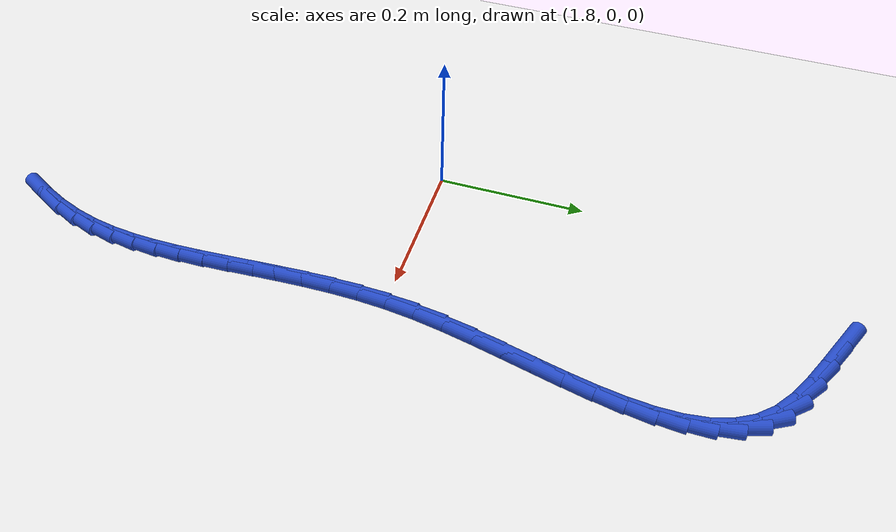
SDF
<sdf version="1.6">
 <world name="default">
  <model name="ground_plane">
   <static>1</static>
   <link name="link">
    <collision name="collision">
     <geometry><plane><normal>0 0 1</normal><size>100 100</size></plane></geometry>
     <surface><friction><ode><mu>100</mu><mu2>50</mu2></ode></friction></surface>
    </collision>
    <visual name="visual">
     <cast_shadows>0</cast_shadows>
     <geometry><plane><normal>0 0 1</normal><size>100 100</size></plane></geometry>
     <material>
      <script><uri>file://media/materials/scripts/gazebo.material</uri><name>Gazebo/WhiteGlow</name></script>
     </material>
    </visual>
   </link>
  </model>
  <model name="line">
   <link name="link_84">
    <pose>1.9405899093509134 0.5482850672913152 0.01 0 1.57 -0.4155272819419987</pose>
    <collision name="collision">
     <geometry><cylinder><radius>0.01</radius><length>0.08</length></cylinder></geometry>
    </collision>
    <visual name="visual">
     <material>
      <script><name>Gazebo/Blue</name><uri>file://media/materials/scripts/gazebo.material</uri></script>
     </material>
     <geometry><cylinder><radius>0.01</radius><length>0.08</length></cylinder></geometry>
    </visual>
   </link>
   <link name="link_85">
    <pose>1.9742479665416062 0.5334345095919215 0.01 0 1.57 -0.4329333028200804</pose>
    <collision name="collision">
     <geometry><cylinder><radius>0.01</radius><length>0.08</length></cylinder></geometry>
    </collision>
    <visual name="visual">
     <material>
      <script><name>Gazebo/Blue</name><uri>file://media/materials/scripts/gazebo.material</uri></script>
     </material>
     <geometry><cylinder><radius>0.01</radius><length>0.08</length></cylinder></geometry>
    </visual>
   </link>
   <link name="link_86">
    <pose>2.0066600028715373 0.5184544413675684 0.01 0 1.57 -0.49647282865860654</pose>
    <collision name="collision">
     <geometry><cylinder><radius>0.01</radius><length>0.08</length></cylinder></geometry>
    </collision>
    <visual name="visual">
     <material>
      <script><name>Gazebo/Blue</name><uri>file://media/materials/scripts/gazebo.material</uri></script>
     </material>
     <geometry><cylinder><radius>0.01</radius><length>0.08</length></cylinder></geometry>
    </visual>
   </link>
   <link name="link_87">
    <pose>2.036349441783516 0.5023707389948417 0.01 0 1.57 -0.6190568529128387</pose>
    <collision name="collision">
     <geometry><cylinder><radius>0.01</radius><length>0.08</length></cylinder></geometry>
    </collision>
    <visual name="visual">
     <material>
      <script><name>Gazebo/Blue</name><uri>file://media/materials/scripts/gazebo.material</uri></script>
     </material>
     <geometry><cylinder><radius>0.01</radius><length>0.08</length></cylinder></geometry>
    </visual>
   </link>
   <link name="link_88">
    <pose>2.0618397067203493 0.48420927885032716 0.01 0 1.57 -0.8171975485745948</pose>
    <collision name="collision">
     <geometry><cylinder><radius>0.01</radius><length>0.08</length></cylinder></geometry>
    </collision>
    <visual name="visual">
     <material>
      <script><name>Gazebo/Blue</name><uri>file://media/materials/scripts/gazebo.material</uri></script>
     </material>
     <geometry><cylinder><radius>0.01</radius><length>0.08</length></cylinder></geometry>
    </visual>
   </link>
   <link name="link_89">
    <pose>2.0817122450180516 0.4630309066548342 0.01 0 1.57 -1.0534451305153139</pose>
    <collision name="collision">
     <geometry><cylinder><radius>0.01</radius><length>0.08</length></cylinder></geometry>
    </collision>
    <visual name="visual">
     <material>
      <script><name>Gazebo/Blue</name><uri>file://media/materials/scripts/gazebo.material</uri></script>
     </material>
     <geometry><cylinder><radius>0.01</radius><length>0.08</length></cylinder></geometry>
    </visual>
   </link>
   <link name="link_90">
    <pose>2.0956404976929783 0.4385545815508609 0.01 0 1.57 -1.2664079119649352</pose>
    <collision name="collision">
     <geometry><cylinder><radius>0.01</radius><length>0.08</length></cylinder></geometry>
    </collision>
    <visual name="visual">
     <material>
      <script><name>Gazebo/Blue</name><uri>file://media/materials/scripts/gazebo.material</uri></script>
     </material>
     <geometry><cylinder><radius>0.01</radius><length>0.08</length></cylinder></geometry>
    </visual>
   </link>
   <link name="link_91">
    <pose>2.10427005209674 0.4110851475285895 0.01 0 1.57 -1.4385024205389851</pose>
    <collision name="collision">
     <geometry><cylinder><radius>0.01</radius><length>0.08</length></cylinder></geometry>
    </collision>
    <visual name="visual">
     <material>
      <script><name>Gazebo/Blue</name><uri>file://media/materials/scripts/gazebo.material</uri></script>
     </material>
     <geometry><cylinder><radius>0.01</radius><length>0.08</length></cylinder></geometry>
    </visual>
   </link>
   <link name="link_92">
    <pose>2.1082804484086646 0.38094791097832975 0.01 0 1.57 -1.5686171743967905</pose>
    <collision name="collision">
     <geometry><cylinder><radius>0.01</radius><length>0.08</length></cylinder></geometry>
    </collision>
    <visual name="visual">
     <material>
      <script><name>Gazebo/Blue</name><uri>file://media/materials/scripts/gazebo.material</uri></script>
     </material>
     <geometry><cylinder><radius>0.01</radius><length>0.08</length></cylinder></geometry>
    </visual>
   </link>
   <link name="link_93">
    <pose>2.1083512268080766 0.34846817829039073 0.01 0 1.57 1.4786066827711533</pose>
    <collision name="collision">
     <geometry><cylinder><radius>0.01</radius><length>0.08</length></cylinder></geometry>
    </collision>
    <visual name="visual">
     <material>
      <script><name>Gazebo/Blue</name><uri>file://media/materials/scripts/gazebo.material</uri></script>
     </material>
     <geometry><cylinder><radius>0.01</radius><length>0.08</length></cylinder></geometry>
    </visual>
   </link>
   <link name="link_94">
    <pose>2.1051619274743048 0.3139712558550822 0.01 0 1.57 1.4126899988682653</pose>
    <collision name="collision">
     <geometry><cylinder><radius>0.01</radius><length>0.08</length></cylinder></geometry>
    </collision>
    <visual name="visual">
     <material>
      <script><name>Gazebo/Blue</name><uri>file://media/materials/scripts/gazebo.material</uri></script>
     </material>
     <geometry><cylinder><radius>0.01</radius><length>0.08</length></cylinder></geometry>
    </visual>
   </link>
   <link name="link_95">
    <pose>2.099392090586674 0.27778245006271324 0.01 0 1.57 1.3693138224178287</pose>
    <collision name="collision">
     <geometry><cylinder><radius>0.01</radius><length>0.08</length></cylinder></geometry>
    </collision>
    <visual name="visual">
     <material>
      <script><name>Gazebo/Blue</name><uri>file://media/materials/scripts/gazebo.material</uri></script>
     </material>
     <geometry><cylinder><radius>0.01</radius><length>0.08</length></cylinder></geometry>
    </visual>
   </link>
   <link name="link_96">
    <pose>2.0917212563245102 0.24022706730359375 0.01 0 1.57 1.3443573558121642</pose>
    <collision name="collision">
     <geometry><cylinder><radius>0.01</radius><length>0.08</length></cylinder></geometry>
    </collision>
    <visual name="visual">
     <material>
      <script><name>Gazebo/Blue</name><uri>file://media/materials/scripts/gazebo.material</uri></script>
     </material>
     <geometry><cylinder><radius>0.01</radius><length>0.08</length></cylinder></geometry>
    </visual>
   </link>
   <link name="link_97">
    <pose>2.0828289648671414 0.20163041396803233 0.01 0 1.57 1.3352710621516057</pose>
    <collision name="collision">
     <geometry><cylinder><radius>0.01</radius><length>0.08</length></cylinder></geometry>
    </collision>
    <visual name="visual">
     <material>
      <script><name>Gazebo/Blue</name><uri>file://media/materials/scripts/gazebo.material</uri></script>
     </material>
     <geometry><cylinder><radius>0.01</radius><length>0.08</length></cylinder></geometry>
    </visual>
   </link>
   <link name="link_98">
    <pose>2.0733947563938924 0.16231779644633879 0.01 0 1.57 1.3407885204309735</pose>
    <collision name="collision">
     <geometry><cylinder><radius>0.01</radius><length>0.08</length></cylinder></geometry>
    </collision>
    <visual name="visual">
     <material>
      <script><name>Gazebo/Blue</name><uri>file://media/materials/scripts/gazebo.material</uri></script>
     </material>
     <geometry><cylinder><radius>0.01</radius><length>0.08</length></cylinder></geometry>
    </visual>
   </link>
   <link name="link_99">
    <pose>2.0640981710840913 0.12261452112882248 0.01 0 1.57 1.360723215839427</pose>
    <collision name="collision">
     <geometry><cylinder><radius>0.01</radius><length>0.08</length></cylinder></geometry>
    </collision>
    <visual name="visual">
     <material>
      <script><name>Gazebo/Blue</name><uri>file://media/materials/scripts/gazebo.material</uri></script>
     </material>
     <geometry><cylinder><radius>0.01</radius><length>0.08</length></cylinder></geometry>
    </visual>
   </link>
   <link name="link_100">
    <pose>2.0556187491170634 0.08284589440579276 0.01 0 1.57 1.3958639494783402</pose>
    <collision name="collision">
     <geometry><cylinder><radius>0.01</radius><length>0.08</length></cylinder></geometry>
    </collision>
    <visual name="visual">
     <material>
      <script><name>Gazebo/Blue</name><uri>file://media/materials/scripts/gazebo.material</uri></script>
     </material>
     <geometry><cylinder><radius>0.01</radius><length>0.08</length></cylinder></geometry>
    </visual>
   </link>
   <link name="link_101">
    <pose>2.0486360306721347 0.04333722266755914 0.01 0 1.57 1.4470814676789128</pose>
    <collision name="collision">
     <geometry><cylinder><radius>0.01</radius><length>0.08</length></cylinder></geometry>
    </collision>
    <visual name="visual">
     <material>
      <script><name>Gazebo/Blue</name><uri>file://media/materials/scripts/gazebo.material</uri></script>
     </material>
     <geometry><cylinder><radius>0.01</radius><length>0.08</length></cylinder></geometry>
    </visual>
   </link>
   <link name="link_102">
    <pose>2.0437945446708308 0.004402849247532419 0.01 0 1.57 1.5020643140727468</pose>
    <collision name="collision">
     <geometry><cylinder><radius>0.01</radius><length>0.08</length></cylinder></geometry>
    </collision>
    <visual name="visual">
     <material>
      <script><name>Gazebo/Blue</name><uri>file://media/materials/scripts/gazebo.material</uri></script>
     </material>
     <geometry><cylinder><radius>0.01</radius><length>0.08</length></cylinder></geometry>
    </visual>
   </link>
   <link name="link_103">
    <pose>2.041163048061173 -0.033823173698696245 0.01 0 1.57 1.5488415703361371</pose>
    <collision name="collision">
     <geometry><cylinder><radius>0.01</radius><length>0.08</length></cylinder></geometry>
    </collision>
    <visual name="visual">
     <material>
      <script><name>Gazebo/Blue</name><uri>file://media/materials/scripts/gazebo.material</uri></script>
     </material>
     <geometry><cylinder><radius>0.01</radius><length>0.08</length></cylinder></geometry>
    </visual>
   </link>
   <link name="link_104">
    <pose>2.0403389268402643 -0.07135439415559429 0.01 0 1.57 -1.5554188363629902</pose>
    <collision name="collision">
     <geometry><cylinder><radius>0.01</radius><length>0.08</length></cylinder></geometry>
    </collision>
    <visual name="visual">
     <material>
      <script><name>Gazebo/Blue</name><uri>file://media/materials/scripts/gazebo.material</uri></script>
     </material>
     <geometry><cylinder><radius>0.01</radius><length>0.08</length></cylinder></geometry>
    </visual>
   </link>
   <link name="link_105">
    <pose>2.040905698293964 -0.10820870280994982 0.01 0 1.57 -1.5282424162903245</pose>
    <collision name="collision">
     <geometry><cylinder><radius>0.01</radius><length>0.08</length></cylinder></geometry>
    </collision>
    <visual name="visual">
     <material>
      <script><name>Gazebo/Blue</name><uri>file://media/materials/scripts/gazebo.material</uri></script>
     </material>
     <geometry><cylinder><radius>0.01</radius><length>0.08</length></cylinder></geometry>
    </visual>
   </link>
   <link name="link_106">
    <pose>2.042446879708129 -0.144403990348551 0.01 0 1.57 -1.5118250286387296</pose>
    <collision name="collision">
     <geometry><cylinder><radius>0.01</radius><length>0.08</length></cylinder></geometry>
    </collision>
    <visual name="visual">
     <material>
      <script><name>Gazebo/Blue</name><uri>file://media/materials/scripts/gazebo.material</uri></script>
     </material>
     <geometry><cylinder><radius>0.01</radius><length>0.08</length></cylinder></geometry>
    </visual>
   </link>
   <link name="link_107">
    <pose>2.0445459883686166 -0.1799581474581859 0.01 0 1.57 -1.5067416671042129</pose>
    <collision name="collision">
     <geometry><cylinder><radius>0.01</radius><length>0.08</length></cylinder></geometry>
    </collision>
    <visual name="visual">
     <material>
      <script><name>Gazebo/Blue</name><uri>file://media/materials/scripts/gazebo.material</uri></script>
     </material>
     <geometry><cylinder><radius>0.01</radius><length>0.08</length></cylinder></geometry>
    </visual>
   </link>
   <link name="link_108">
    <pose>2.0467865415612856 -0.21488906482564268 0.01 0 1.57 -1.5135978262283427</pose>
    <collision name="collision">
     <geometry><cylinder><radius>0.01</radius><length>0.08</length></cylinder></geometry>
    </collision>
    <visual name="visual">
     <material>
      <script><name>Gazebo/Blue</name><uri>file://media/materials/scripts/gazebo.material</uri></script>
     </material>
     <geometry><cylinder><radius>0.01</radius><length>0.08</length></cylinder></geometry>
    </visual>
   </link>
   <link name="link_109">
    <pose>2.0487520565719928 -0.24921463313770953 0.01 0 1.57 -1.5330529825794048</pose>
    <collision name="collision">
     <geometry><cylinder><radius>0.01</radius><length>0.08</length></cylinder></geometry>
    </collision>
    <visual name="visual">
     <material>
      <script><name>Gazebo/Blue</name><uri>file://media/materials/scripts/gazebo.material</uri></script>
     </material>
     <geometry><cylinder><radius>0.01</radius><length>0.08</length></cylinder></geometry>
    </visual>
   </link>
   <link name="link_110">
    <pose>2.050026050686596 -0.2829527430811744 0.01 0 1.57 -1.565791912752583</pose>
    <collision name="collision">
     <geometry><cylinder><radius>0.01</radius><length>0.08</length></cylinder></geometry>
    </collision>
    <visual name="visual">
     <material>
      <script><name>Gazebo/Blue</name><uri>file://media/materials/scripts/gazebo.material</uri></script>
     </material>
     <geometry><cylinder><radius>0.01</radius><length>0.08</length></cylinder></geometry>
    </visual>
   </link>
   <link name="link_111">
    <pose>2.0501920411909533 -0.3161212853428256 0.01 0 1.57 1.5291702819902284</pose>
    <collision name="collision">
     <geometry><cylinder><radius>0.01</radius><length>0.08</length></cylinder></geometry>
    </collision>
    <visual name="visual">
     <material>
      <script><name>Gazebo/Blue</name><uri>file://media/materials/scripts/gazebo.material</uri></script>
     </material>
     <geometry><cylinder><radius>0.01</radius><length>0.08</length></cylinder></geometry>
    </visual>
   </link>
   <link name="link_112">
    <pose>2.0488335453709214 -0.3487381506094512 0.01 0 1.57 1.468315325837513</pose>
    <collision name="collision">
     <geometry><cylinder><radius>0.01</radius><length>0.08</length></cylinder></geometry>
    </collision>
    <visual name="visual">
     <material>
      <script><name>Gazebo/Blue</name><uri>file://media/materials/scripts/gazebo.material</uri></script>
     </material>
     <geometry><cylinder><radius>0.01</radius><length>0.08</length></cylinder></geometry>
    </visual>
   </link>
   <link name="link_113">
    <pose>2.0455340805123594 -0.38082122956783926 0.01 0 1.57 1.3934760156456938</pose>
    <collision name="collision">
     <geometry><cylinder><radius>0.01</radius><length>0.08</length></cylinder></geometry>
    </collision>
    <visual name="visual">
     <material>
      <script><name>Gazebo/Blue</name><uri>file://media/materials/scripts/gazebo.material</uri></script>
     </material>
     <geometry><cylinder><radius>0.01</radius><length>0.08</length></cylinder></geometry>
    </visual>
   </link>
   <link name="link_114">
    <pose>2.039877163901124 -0.412388412904778 0.01 0 1.57 1.3058197676594818</pose>
    <collision name="collision">
     <geometry><cylinder><radius>0.01</radius><length>0.08</length></cylinder></geometry>
    </collision>
    <visual name="visual">
     <material>
      <script><name>Gazebo/Blue</name><uri>file://media/materials/scripts/gazebo.material</uri></script>
     </material>
     <geometry><cylinder><radius>0.01</radius><length>0.08</length></cylinder></geometry>
    </visual>
   </link>
   <link name="link_115">
    <pose>2.0314463128230726 -0.4434575913070554 0.01 0 1.57 1.2106303507278744</pose>
    <collision name="collision">
     <geometry><cylinder><radius>0.01</radius><length>0.08</length></cylinder></geometry>
    </collision>
    <visual name="visual">
     <material>
      <script><name>Gazebo/Blue</name><uri>file://media/materials/scripts/gazebo.material</uri></script>
     </material>
     <geometry><cylinder><radius>0.01</radius><length>0.08</length></cylinder></geometry>
    </visual>
   </link>
   <link name="link_116">
    <pose>2.0199249816695373 -0.4740512318945792 0.01 0 1.57 1.1271387403549038</pose>
    <collision name="collision">
     <geometry><cylinder><radius>0.01</radius><length>0.08</length></cylinder></geometry>
    </collision>
    <visual name="visual">
     <material>
      <script><name>Gazebo/Blue</name><uri>file://media/materials/scripts/gazebo.material</uri></script>
     </material>
     <geometry><cylinder><radius>0.01</radius><length>0.08</length></cylinder></geometry>
    </visual>
   </link>
   <link name="link_117">
    <pose>2.005587618214848 -0.5042188652255981 0.01 0 1.57 1.0609751752664678</pose>
    <collision name="collision">
     <geometry><cylinder><radius>0.01</radius><length>0.08</length></cylinder></geometry>
    </collision>
    <visual name="visual">
     <material>
      <script><name>Gazebo/Blue</name><uri>file://media/materials/scripts/gazebo.material</uri></script>
     </material>
     <geometry><cylinder><radius>0.01</radius><length>0.08</length></cylinder></geometry>
    </visual>
   </link>
  </model>
 </world>
</sdf>
